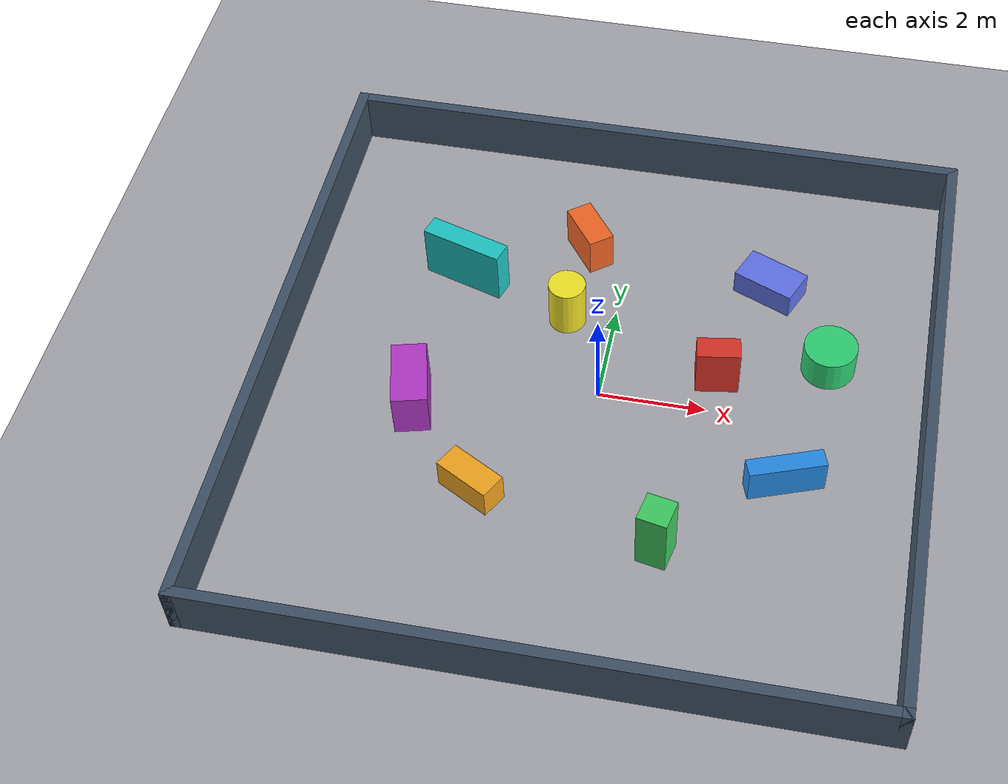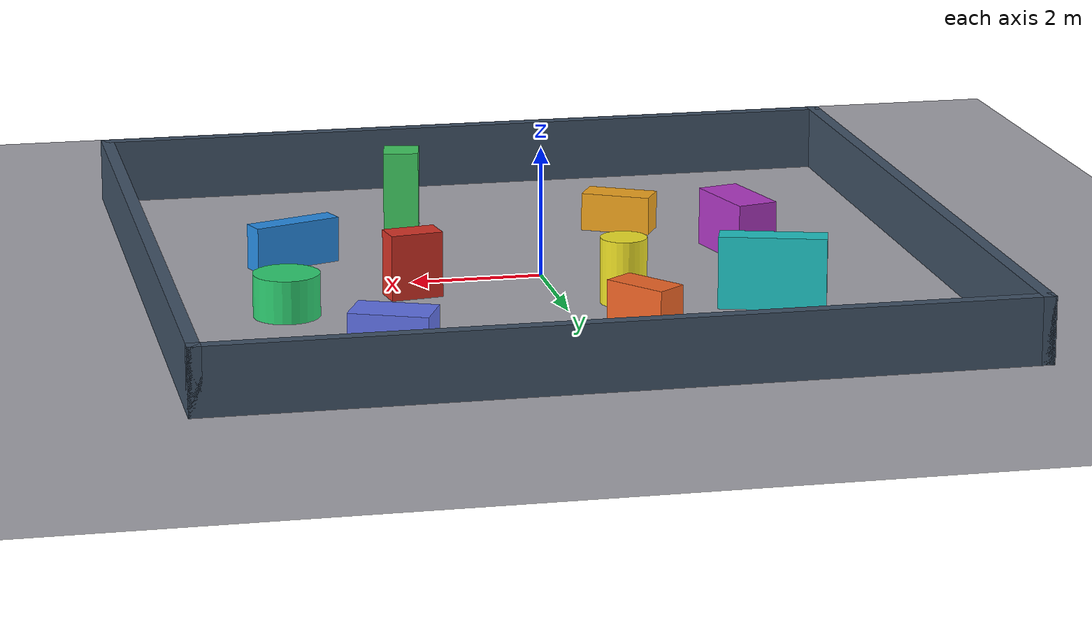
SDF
<?xml version="1.0"?>
<sdf version="1.9">
  <world name="obstacle_test_world">
    <plugin filename="gz-sim-physics-system" name="gz::sim::systems::Physics"/>
    <plugin filename="gz-sim-user-commands-system" name="gz::sim::systems::UserCommands"/>
    <plugin filename="gz-sim-scene-broadcaster-system" name="gz::sim::systems::SceneBroadcaster"/>
    <plugin filename="gz-sim-sensors-system" name="gz::sim::systems::Sensors">
      <render_engine>ogre2</render_engine>
    </plugin>
    <plugin filename="gz-sim-imu-system" name="gz::sim::systems::Imu"/>

    <physics name="default_physics" type="ode">
      <max_step_size>0.001</max_step_size>
      <real_time_factor>1.0</real_time_factor>
    </physics>

    <scene>
      <ambient>0.35 0.35 0.35 1</ambient>
      <background>0.12 0.14 0.18 1</background>
      <shadows>true</shadows>
    </scene>

    <light name="sun" type="directional">
      <cast_shadows>true</cast_shadows>
      <pose>0 0 10 0 0 0</pose>
      <diffuse>0.9 0.9 0.9 1</diffuse>
      <specular>0.2 0.2 0.2 1</specular>
      <direction>-0.4 0.2 -1.0</direction>
    </light>

    <model name="ground_plane">
      <static>true</static>
      <link name="ground_link">
        <collision name="ground_collision">
          <geometry>
            <plane><normal>0 0 1</normal><size>14 14</size></plane>
          </geometry>
        </collision>
        <visual name="ground_visual">
          <geometry>
            <plane><normal>0 0 1</normal><size>14 14</size></plane>
          </geometry>
          <material>
            <ambient>0.55 0.55 0.58 1</ambient>
            <diffuse>0.65 0.65 0.68 1</diffuse>
          </material>
        </visual>
      </link>
    </model>

    <!-- Four boundary walls create a 12 m by 12 m test arena. -->
    <model name="north_wall">
      <static>true</static><pose>0 6 0.5 0 0 0</pose>
      <link name="link">
        <collision name="collision"><geometry><box><size>12.2 0.2 1.0</size></box></geometry></collision>
        <visual name="visual"><geometry><box><size>12.2 0.2 1.0</size></box></geometry>
          <material><ambient>0.18 0.22 0.28 1</ambient><diffuse>0.25 0.32 0.40 1</diffuse></material>
        </visual>
      </link>
    </model>
    <model name="south_wall">
      <static>true</static><pose>0 -6 0.5 0 0 0</pose>
      <link name="link">
        <collision name="collision"><geometry><box><size>12.2 0.2 1.0</size></box></geometry></collision>
        <visual name="visual"><geometry><box><size>12.2 0.2 1.0</size></box></geometry>
          <material><ambient>0.18 0.22 0.28 1</ambient><diffuse>0.25 0.32 0.40 1</diffuse></material>
        </visual>
      </link>
    </model>
    <model name="east_wall">
      <static>true</static><pose>6 0 0.5 0 0 0</pose>
      <link name="link">
        <collision name="collision"><geometry><box><size>0.2 12.2 1.0</size></box></geometry></collision>
        <visual name="visual"><geometry><box><size>0.2 12.2 1.0</size></box></geometry>
          <material><ambient>0.18 0.22 0.28 1</ambient><diffuse>0.25 0.32 0.40 1</diffuse></material>
        </visual>
      </link>
    </model>
    <model name="west_wall">
      <static>true</static><pose>-6 0 0.5 0 0 0</pose>
      <link name="link">
        <collision name="collision"><geometry><box><size>0.2 12.2 1.0</size></box></geometry></collision>
        <visual name="visual"><geometry><box><size>0.2 12.2 1.0</size></box></geometry>
          <material><ambient>0.18 0.22 0.28 1</ambient><diffuse>0.25 0.32 0.40 1</diffuse></material>
        </visual>
      </link>
    </model>

    <!-- Ten repeatable obstacles with varied poses and dimensions. -->
    <model name="box_01">
      <static>true</static><pose>2.1 0.7 0.5 0 0 0.15</pose>
      <link name="link">
        <collision name="collision"><geometry><box><size>0.8 0.45 1.0</size></box></geometry></collision>
        <visual name="visual"><geometry><box><size>0.8 0.45 1.0</size></box></geometry>
          <material><ambient>0.70 0.15 0.12 1</ambient><diffuse>0.85 0.20 0.15 1</diffuse></material>
        </visual>
      </link>
    </model>

    <model name="box_02">
      <static>true</static><pose>3.6 -1.4 0.35 0 0 0.35</pose>
      <link name="link">
        <collision name="collision"><geometry><box><size>1.4 0.35 0.7</size></box></geometry></collision>
        <visual name="visual"><geometry><box><size>1.4 0.35 0.7</size></box></geometry>
          <material><ambient>0.12 0.45 0.75 1</ambient><diffuse>0.15 0.55 0.90 1</diffuse></material>
        </visual>
      </link>
    </model>

    <model name="box_03">
      <static>true</static><pose>1.6 -3.2 0.65 0 0 -0.2</pose>
      <link name="link">
        <collision name="collision"><geometry><box><size>0.55 0.55 1.3</size></box></geometry></collision>
        <visual name="visual"><geometry><box><size>0.55 0.55 1.3</size></box></geometry>
          <material><ambient>0.20 0.65 0.30 1</ambient><diffuse>0.25 0.80 0.38 1</diffuse></material>
        </visual>
      </link>
    </model>

    <model name="box_04">
      <static>true</static><pose>-1.8 -2.5 0.3 0 0 -0.5</pose>
      <link name="link">
        <collision name="collision"><geometry><box><size>1.1 0.5 0.6</size></box></geometry></collision>
        <visual name="visual"><geometry><box><size>1.1 0.5 0.6</size></box></geometry>
          <material><ambient>0.75 0.50 0.10 1</ambient><diffuse>0.95 0.65 0.12 1</diffuse></material>
        </visual>
      </link>
    </model>

    <model name="box_05">
      <static>true</static><pose>-3.3 -0.8 0.45 0 0 0.25</pose>
      <link name="link">
        <collision name="collision"><geometry><box><size>0.65 1.3 0.9</size></box></geometry></collision>
        <visual name="visual"><geometry><box><size>0.65 1.3 0.9</size></box></geometry>
          <material><ambient>0.55 0.18 0.62 1</ambient><diffuse>0.70 0.22 0.78 1</diffuse></material>
        </visual>
      </link>
    </model>

    <model name="box_06">
      <static>true</static><pose>-3.0 2.4 0.55 0 0 -0.3</pose>
      <link name="link">
        <collision name="collision"><geometry><box><size>1.6 0.4 1.1</size></box></geometry></collision>
        <visual name="visual"><geometry><box><size>1.6 0.4 1.1</size></box></geometry>
          <material><ambient>0.10 0.62 0.62 1</ambient><diffuse>0.12 0.78 0.78 1</diffuse></material>
        </visual>
      </link>
    </model>

    <model name="box_07">
      <static>true</static><pose>-0.8 3.5 0.4 0 0 0.65</pose>
      <link name="link">
        <collision name="collision"><geometry><box><size>0.5 1.0 0.8</size></box></geometry></collision>
        <visual name="visual"><geometry><box><size>0.5 1.0 0.8</size></box></geometry>
          <material><ambient>0.82 0.32 0.12 1</ambient><diffuse>0.95 0.40 0.15 1</diffuse></material>
        </visual>
      </link>
    </model>

    <model name="box_08">
      <static>true</static><pose>2.8 3.1 0.25 0 0 -0.4</pose>
      <link name="link">
        <collision name="collision"><geometry><box><size>1.2 0.7 0.5</size></box></geometry></collision>
        <visual name="visual"><geometry><box><size>1.2 0.7 0.5</size></box></geometry>
          <material><ambient>0.30 0.35 0.75 1</ambient><diffuse>0.38 0.45 0.92 1</diffuse></material>
        </visual>
      </link>
    </model>

    <model name="cylinder_01">
      <static>true</static><pose>-0.9 1.7 0.5 0 0 0</pose>
      <link name="link">
        <collision name="collision"><geometry><cylinder><radius>0.35</radius><length>1.0</length></cylinder></geometry></collision>
        <visual name="visual"><geometry><cylinder><radius>0.35</radius><length>1.0</length></cylinder></geometry>
          <material><ambient>0.75 0.70 0.12 1</ambient><diffuse>0.95 0.90 0.15 1</diffuse></material>
        </visual>
      </link>
    </model>

    <model name="cylinder_02">
      <static>true</static><pose>4.1 1.4 0.325 0 0 0</pose>
      <link name="link">
        <collision name="collision"><geometry><cylinder><radius>0.5</radius><length>0.65</length></cylinder></geometry></collision>
        <visual name="visual"><geometry><cylinder><radius>0.5</radius><length>0.65</length></cylinder></geometry>
          <material><ambient>0.15 0.65 0.35 1</ambient><diffuse>0.18 0.82 0.45 1</diffuse></material>
        </visual>
      </link>
    </model>

    <gui fullscreen="0">
      <camera name="overview_camera">
        <pose>8 -10 10 0 0.65 2.35</pose>
        <view_controller>orbit</view_controller>
        <projection_type>perspective</projection_type>
      </camera>
    </gui>
  </world>
</sdf>
